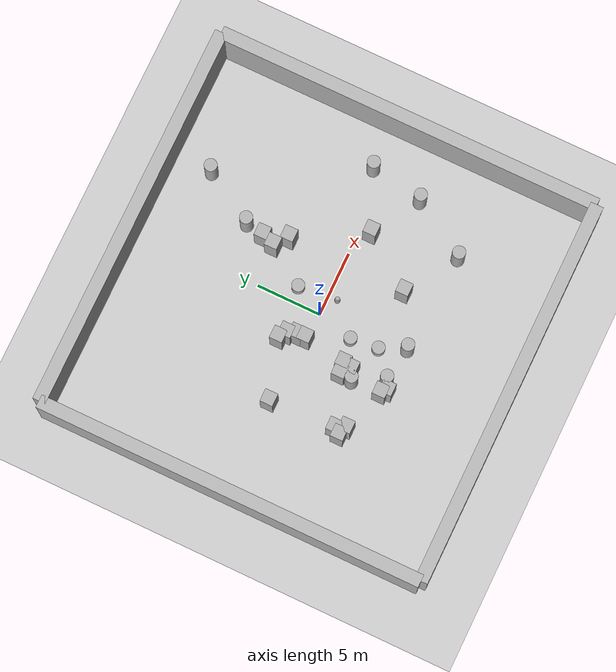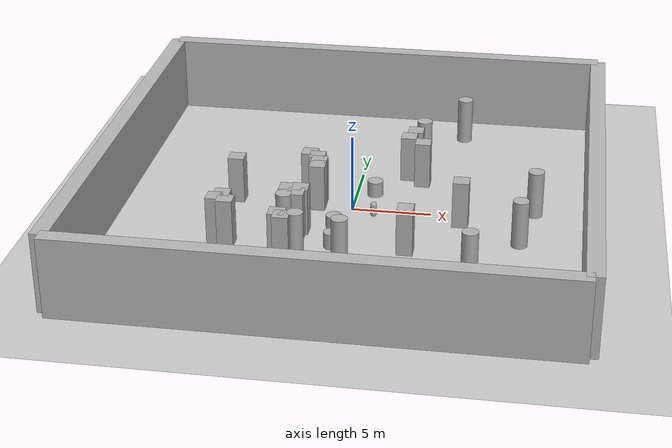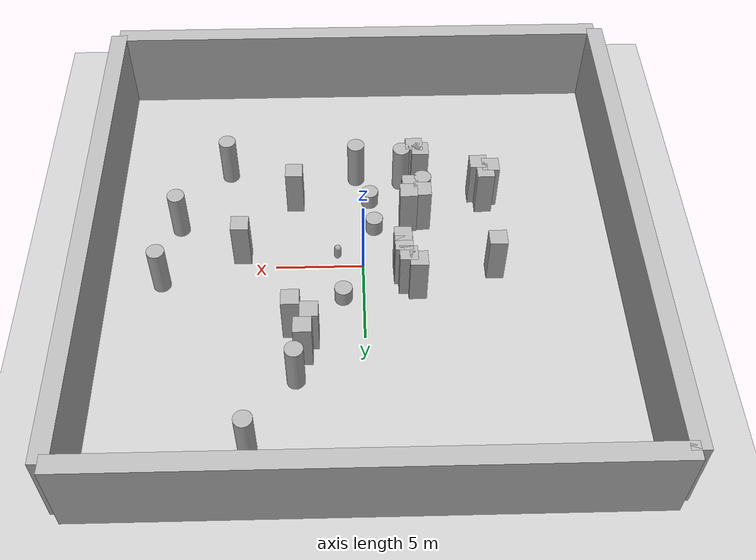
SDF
<sdf version="1.10">
 <world name="map">
  <physics name="1ms" type="ignored">
   <max_step_size>0.001</max_step_size>
   <real_time_factor>1</real_time_factor>
  </physics>
  <plugin filename="gz-sim-physics-system" name="gz::sim::systems::Physics"/>
  <plugin filename="gz-sim-sensors-system" name="gz::sim::systems::Sensors">
   <render_engine>ogre2</render_engine>
  </plugin>
  <plugin filename="gz-sim-user-commands-system" name="gz::sim::systems::UserCommands"/>
  <plugin filename="gz-sim-scene-broadcaster-system" name="gz::sim::systems::SceneBroadcaster"/>
  <plugin filename="gz-sim-air-pressure-system" name="gz::sim::systems::AirPressure"/>
  <plugin filename="gz-sim-air-speed-system" name="gz::sim::systems::AirSpeed"/>
  <plugin filename="gz-sim-altimeter-system" name="gz::sim::systems::Altimeter"/>
  <plugin filename="gz-sim-imu-system" name="gz::sim::systems::Imu"/>
  <plugin filename="gz-sim-magnetometer-system" name="gz::sim::systems::Magnetometer"/>
  <plugin filename="gz-sim-navsat-system" name="gz::sim::systems::NavSat"/>
  <atmosphere type="adiabatic"/>
  <scene>
   <ambient>0.400000006 0.400000006 0.400000006 1</ambient>
   <background>0.699999988 0.699999988 0.699999988 1</background>
   <shadows>true</shadows>
  </scene>
  <model name="ground_plane">
   <static>true</static>
   <link name="link">
    <collision name="collision">
     <geometry><plane><normal>0 0 1</normal><size>100 100</size></plane></geometry>
    </collision>
    <visual name="visual">
     <geometry><plane><normal>0 0 1</normal><size>100 100</size></plane></geometry>
     <material>
      <ambient>0.800000012 0.800000012 0.800000012 1</ambient>
      <diffuse>0.800000012 0.800000012 0.800000012 1</diffuse>
      <specular>0.800000012 0.800000012 0.800000012 1</specular>
     </material>
    </visual>
    <inertial>
     <mass>1</mass>
     <inertia><ixx>1</ixx><ixy>0</ixy><ixz>0</ixz><iyy>1</iyy><iyz>0</iyz><izz>1</izz></inertia>
    </inertial>
   </link>
  </model>
  <model name="box">
   <pose>3.3245237272664223 6.137337572602199 0.5 0 0 0</pose>
   <link name="box_link">
    <inertial>
     <inertia><ixx>0.16666</ixx><ixy>0</ixy><ixz>0</ixz><iyy>0.16666</iyy><iyz>0</iyz><izz>0.16666</izz></inertia>
     <mass>1</mass>
    </inertial>
    <collision name="box_collision"><geometry><box><size>1 1 5</size></box></geometry></collision>
    <visual name="box_visual">
     <geometry><box><size>1 1 5</size></box></geometry>
     <material>
      <ambient>0.300000012 0.300000012 0.300000012 1</ambient>
      <diffuse>0.699999988 0.699999988 0.699999988 1</diffuse>
      <specular>1 1 1 1</specular>
     </material>
    </visual>
   </link>
   <static>false</static>
  </model>
  <model name="cylinder">
   <pose>-0.72203590736623369 -2.8243370734408528 0.5 0 0 0</pose>
   <link name="cylinder_link">
    <inertial>
     <inertia>
      <ixx>0.14580000000000001</ixx>
      <ixy>0</ixy>
      <ixz>0</ixz>
      <iyy>0.14580000000000001</iyy>
      <iyz>0</iyz>
      <izz>0.125</izz>
     </inertia>
     <mass>1</mass>
    </inertial>
    <collision name="cylinder_collision">
     <geometry><cylinder><radius>0.5</radius><length>1</length></cylinder></geometry>
    </collision>
    <visual name="cylinder_visual">
     <geometry><cylinder><radius>0.5</radius><length>1</length></cylinder></geometry>
     <material>
      <ambient>0.300000012 0.300000012 0.300000012 1</ambient>
      <diffuse>0.699999988 0.699999988 0.699999988 1</diffuse>
      <specular>1 1 1 1</specular>
     </material>
    </visual>
   </link>
   <static>false</static>
  </model>
  <model name="box_0">
   <pose>2.9897288248366607 5.15230320680541 0.5 0 0 0</pose>
   <link name="box_link">
    <inertial>
     <inertia><ixx>0.16666</ixx><ixy>0</ixy><ixz>0</ixz><iyy>0.16666</iyy><iyz>0</iyz><izz>0.16666</izz></inertia>
     <mass>1</mass>
    </inertial>
    <collision name="box_collision"><geometry><box><size>1 1 5</size></box></geometry></collision>
    <visual name="box_visual">
     <geometry><box><size>1 1 5</size></box></geometry>
     <material>
      <ambient>0.300000012 0.300000012 0.300000012 1</ambient>
      <diffuse>0.699999988 0.699999988 0.699999988 1</diffuse>
      <specular>1 1 1 1</specular>
     </material>
    </visual>
   </link>
   <static>false</static>
  </model>
  <model name="box_1">
   <pose>3.9948109669313716 4.3431861216919927 0.5 0 0 0</pose>
   <link name="box_link">
    <inertial>
     <inertia><ixx>0.16666</ixx><ixy>0</ixy><ixz>0</ixz><iyy>0.16666</iyy><iyz>0</iyz><izz>0.16666</izz></inertia>
     <mass>1</mass>
    </inertial>
    <collision name="box_collision"><geometry><box><size>1 1 5</size></box></geometry></collision>
    <visual name="box_visual">
     <geometry><box><size>1 1 5</size></box></geometry>
     <material>
      <ambient>0.300000012 0.300000012 0.300000012 1</ambient>
      <diffuse>0.699999988 0.699999988 0.699999988 1</diffuse>
      <specular>1 1 1 1</specular>
     </material>
    </visual>
   </link>
   <static>false</static>
  </model>
  <model name="box_2">
   <pose>-6.9158057635143422 -5.3925937900630387 0.5 0 0 0</pose>
   <link name="box_link">
    <inertial>
     <inertia><ixx>0.16666</ixx><ixy>0</ixy><ixz>0</ixz><iyy>0.16666</iyy><iyz>0</iyz><izz>0.16666</izz></inertia>
     <mass>1</mass>
    </inertial>
    <collision name="box_collision"><geometry><box><size>1 1 5</size></box></geometry></collision>
    <visual name="box_visual">
     <geometry><box><size>1 1 5</size></box></geometry>
     <material>
      <ambient>0.300000012 0.300000012 0.300000012 1</ambient>
      <diffuse>0.699999988 0.699999988 0.699999988 1</diffuse>
      <specular>1 1 1 1</specular>
     </material>
    </visual>
   </link>
   <static>false</static>
  </model>
  <model name="box_3">
   <pose>-7.6136462022371774 -5.142927832510038 0.5 0 0 0</pose>
   <link name="box_link">
    <inertial>
     <inertia><ixx>0.16666</ixx><ixy>0</ixy><ixz>0</ixz><iyy>0.16666</iyy><iyz>0</iyz><izz>0.16666</izz></inertia>
     <mass>1</mass>
    </inertial>
    <collision name="box_collision"><geometry><box><size>1 1 5</size></box></geometry></collision>
    <visual name="box_visual">
     <geometry><box><size>1 1 5</size></box></geometry>
     <material>
      <ambient>0.300000012 0.300000012 0.300000012 1</ambient>
      <diffuse>0.699999988 0.699999988 0.699999988 1</diffuse>
      <specular>1 1 1 1</specular>
     </material>
    </visual>
   </link>
   <static>false</static>
  </model>
  <model name="box_4">
   <pose>-7.2855342701932955 -4.6225314286755168 0.5 0 0 0</pose>
   <link name="box_link">
    <inertial>
     <inertia><ixx>0.16666</ixx><ixy>0</ixy><ixz>0</ixz><iyy>0.16666</iyy><iyz>0</iyz><izz>0.16666</izz></inertia>
     <mass>1</mass>
    </inertial>
    <collision name="box_collision"><geometry><box><size>1 1 5</size></box></geometry></collision>
    <visual name="box_visual">
     <geometry><box><size>1 1 5</size></box></geometry>
     <material>
      <ambient>0.300000012 0.300000012 0.300000012 1</ambient>
      <diffuse>0.699999988 0.699999988 0.699999988 1</diffuse>
      <specular>1 1 1 1</specular>
     </material>
    </visual>
   </link>
   <static>false</static>
  </model>
  <model name="box_5">
   <pose>-3.0213739192808333 1.8634544273041493 0.5 0 0 0</pose>
   <link name="box_link">
    <inertial>
     <inertia><ixx>0.16666</ixx><ixy>0</ixy><ixz>0</ixz><iyy>0.16666</iyy><iyz>0</iyz><izz>0.16666</izz></inertia>
     <mass>1</mass>
    </inertial>
    <collision name="box_collision"><geometry><box><size>1 1 5</size></box></geometry></collision>
    <visual name="box_visual">
     <geometry><box><size>1 1 5</size></box></geometry>
     <material>
      <ambient>0.300000012 0.300000012 0.300000012 1</ambient>
      <diffuse>0.699999988 0.699999988 0.699999988 1</diffuse>
      <specular>1 1 1 1</specular>
     </material>
    </visual>
   </link>
   <static>false</static>
  </model>
  <model name="box_6">
   <pose>-2.4786264444795165 1.475592770159146 0.5 0 0 0</pose>
   <link name="box_link">
    <inertial>
     <inertia><ixx>0.16666</ixx><ixy>0</ixy><ixz>0</ixz><iyy>0.16666</iyy><iyz>0</iyz><izz>0.16666</izz></inertia>
     <mass>1</mass>
    </inertial>
    <collision name="box_collision"><geometry><box><size>1 1 5</size></box></geometry></collision>
    <visual name="box_visual">
     <geometry><box><size>1 1 5</size></box></geometry>
     <material>
      <ambient>0.300000012 0.300000012 0.300000012 1</ambient>
      <diffuse>0.699999988 0.699999988 0.699999988 1</diffuse>
      <specular>1 1 1 1</specular>
     </material>
    </visual>
   </link>
   <static>false</static>
  </model>
  <model name="box_7">
   <pose>-2.2465629230384287 0.76769296150061628 0.5 0 0 0</pose>
   <link name="box_link">
    <inertial>
     <inertia><ixx>0.16666</ixx><ixy>0</ixy><ixz>0</ixz><iyy>0.16666</iyy><iyz>0</iyz><izz>0.16666</izz></inertia>
     <mass>1</mass>
    </inertial>
    <collision name="box_collision"><geometry><box><size>1 1 5</size></box></geometry></collision>
    <visual name="box_visual">
     <geometry><box><size>1 1 5</size></box></geometry>
     <material>
      <ambient>0.300000012 0.300000012 0.300000012 1</ambient>
      <diffuse>0.699999988 0.699999988 0.699999988 1</diffuse>
      <specular>1 1 1 1</specular>
     </material>
    </visual>
   </link>
   <static>false</static>
  </model>
  <model name="box_8">
   <pose>-2.2234519485298136 0.095993541585208675 0.5 0 0 0</pose>
   <link name="box_link">
    <inertial>
     <inertia><ixx>0.16666</ixx><ixy>0</ixy><ixz>0</ixz><iyy>0.16666</iyy><iyz>0</iyz><izz>0.16666</izz></inertia>
     <mass>1</mass>
    </inertial>
    <collision name="box_collision"><geometry><box><size>1 1 5</size></box></geometry></collision>
    <visual name="box_visual">
     <geometry><box><size>1 1 5</size></box></geometry>
     <material>
      <ambient>0.300000012 0.300000012 0.300000012 1</ambient>
      <diffuse>0.699999988 0.699999988 0.699999988 1</diffuse>
      <specular>1 1 1 1</specular>
     </material>
    </visual>
   </link>
   <static>false</static>
  </model>
  <model name="cylinder_0">
   <pose>-0.50989404792879967 -4.9760559913132347 0.5 0 0 0</pose>
   <link name="cylinder_link">
    <inertial>
     <inertia>
      <ixx>0.14580000000000001</ixx>
      <ixy>0</ixy>
      <ixz>0</ixz>
      <iyy>0.14580000000000001</iyy>
      <iyz>0</iyz>
      <izz>0.125</izz>
     </inertia>
     <mass>1</mass>
    </inertial>
    <collision name="cylinder_collision">
     <geometry><cylinder><radius>0.5</radius><length>1</length></cylinder></geometry>
    </collision>
    <visual name="cylinder_visual">
     <geometry><cylinder><radius>0.5</radius><length>1</length></cylinder></geometry>
     <material>
      <ambient>0.300000012 0.300000012 0.300000012 1</ambient>
      <diffuse>0.699999988 0.699999988 0.699999988 1</diffuse>
      <specular>1 1 1 1</specular>
     </material>
    </visual>
   </link>
   <static>false</static>
  </model>
  <model name="capsule">
   <pose>1.4533725246880671 -0.74794199459035937 0.5 0 0 0</pose>
   <link name="capsule_link">
    <inertial>
     <inertia>
      <ixx>0.074153999999999998</ixx>
      <ixy>0</ixy>
      <ixz>0</ixz>
      <iyy>0.074153999999999998</iyy>
      <iyz>0</iyz>
      <izz>0.018769000000000001</izz>
     </inertia>
     <mass>1</mass>
    </inertial>
    <collision name="capsule_collision">
     <geometry>
      <capsule><radius>0.20000000000000001</radius><length>0.59999999999999998</length></capsule>
     </geometry>
    </collision>
    <visual name="capsule_visual">
     <geometry>
      <capsule><radius>0.20000000000000001</radius><length>0.59999999999999998</length></capsule>
     </geometry>
     <material>
      <ambient>0.300000012 0.300000012 0.300000012 1</ambient>
      <diffuse>0.699999988 0.699999988 0.699999988 1</diffuse>
      <specular>1 1 1 1</specular>
     </material>
    </visual>
   </link>
   <static>false</static>
  </model>
  <model name="cylinder_1">
   <pose>1.1536750640728535 2.2748950176591531 0.5 0 0 0</pose>
   <link name="cylinder_link">
    <inertial>
     <inertia>
      <ixx>0.14580000000000001</ixx>
      <ixy>0</ixy>
      <ixz>0</ixz>
      <iyy>0.14580000000000001</iyy>
      <iyz>0</iyz>
      <izz>0.125</izz>
     </inertia>
     <mass>1</mass>
    </inertial>
    <collision name="cylinder_collision">
     <geometry><cylinder><radius>0.5</radius><length>1</length></cylinder></geometry>
    </collision>
    <visual name="cylinder_visual">
     <geometry><cylinder><radius>0.5</radius><length>1</length></cylinder></geometry>
     <material>
      <ambient>0.300000012 0.300000012 0.300000012 1</ambient>
      <diffuse>0.699999988 0.699999988 0.699999988 1</diffuse>
      <specular>1 1 1 1</specular>
     </material>
    </visual>
   </link>
   <static>false</static>
  </model>
  <model name="box_9">
   <pose>6.9234266521545145 -0.89752316878740324 0.5 0 0 0</pose>
   <link name="box_link">
    <inertial>
     <inertia><ixx>0.16666</ixx><ixy>0</ixy><ixz>0</ixz><iyy>0.16666</iyy><iyz>0</iyz><izz>0.16666</izz></inertia>
     <mass>1</mass>
    </inertial>
    <collision name="box_collision"><geometry><box><size>1 1 5</size></box></geometry></collision>
    <visual name="box_visual">
     <geometry><box><size>1 1 5</size></box></geometry>
     <material>
      <ambient>0.300000012 0.300000012 0.300000012 1</ambient>
      <diffuse>0.699999988 0.699999988 0.699999988 1</diffuse>
      <specular>1 1 1 1</specular>
     </material>
    </visual>
   </link>
   <static>false</static>
  </model>
  <model name="box_10">
   <pose>-7.4943273373032717 0.47922763391659196 0.5 0 0 0</pose>
   <link name="box_link">
    <inertial>
     <inertia><ixx>0.16666</ixx><ixy>0</ixy><ixz>0</ixz><iyy>0.16666</iyy><iyz>0</iyz><izz>0.16666</izz></inertia>
     <mass>1</mass>
    </inertial>
    <collision name="box_collision"><geometry><box><size>1 1 5</size></box></geometry></collision>
    <visual name="box_visual">
     <geometry><box><size>1 1 5</size></box></geometry>
     <material>
      <ambient>0.300000012 0.300000012 0.300000012 1</ambient>
      <diffuse>0.699999988 0.699999988 0.699999988 1</diffuse>
      <specular>1 1 1 1</specular>
     </material>
    </visual>
   </link>
   <static>false</static>
  </model>
  <model name="box_11">
   <pose>3.9416168242545098 -4.9045093547489529 0.5 0 0 0</pose>
   <link name="box_link">
    <inertial>
     <inertia><ixx>0.16666</ixx><ixy>0</ixy><ixz>0</ixz><iyy>0.16666</iyy><iyz>0</iyz><izz>0.16666</izz></inertia>
     <mass>1</mass>
    </inertial>
    <collision name="box_collision"><geometry><box><size>1 1 5</size></box></geometry></collision>
    <visual name="box_visual">
     <geometry><box><size>1 1 5</size></box></geometry>
     <material>
      <ambient>0.300000012 0.300000012 0.300000012 1</ambient>
      <diffuse>0.699999988 0.699999988 0.699999988 1</diffuse>
      <specular>1 1 1 1</specular>
     </material>
    </visual>
   </link>
   <static>false</static>
  </model>
  <model name="box_12">
   <pose>-3.1907677776918426 -6.9076576333268314 0.5 0 0 0</pose>
   <link name="box_link">
    <inertial>
     <inertia><ixx>0.16666</ixx><ixy>0</ixy><ixz>0</ixz><iyy>0.16666</iyy><iyz>0</iyz><izz>0.16666</izz></inertia>
     <mass>1</mass>
    </inertial>
    <collision name="box_collision"><geometry><box><size>1 1 5</size></box></geometry></collision>
    <visual name="box_visual">
     <geometry><box><size>1 1 5</size></box></geometry>
     <material>
      <ambient>0.300000012 0.300000012 0.300000012 1</ambient>
      <diffuse>0.699999988 0.699999988 0.699999988 1</diffuse>
      <specular>1 1 1 1</specular>
     </material>
    </visual>
   </link>
   <static>false</static>
  </model>
  <model name="box_13">
   <pose>-3.5319714827078954 -6.55103836573966 0.5 0 0 0</pose>
   <link name="box_link">
    <inertial>
     <inertia><ixx>0.16666</ixx><ixy>0</ixy><ixz>0</ixz><iyy>0.16666</iyy><iyz>0</iyz><izz>0.16666</izz></inertia>
     <mass>1</mass>
    </inertial>
    <collision name="box_collision"><geometry><box><size>1 1 5</size></box></geometry></collision>
    <visual name="box_visual">
     <geometry><box><size>1 1 5</size></box></geometry>
     <material>
      <ambient>0.300000012 0.300000012 0.300000012 1</ambient>
      <diffuse>0.699999988 0.699999988 0.699999988 1</diffuse>
      <specular>1 1 1 1</specular>
     </material>
    </visual>
   </link>
   <static>false</static>
  </model>
  <model name="box_14">
   <pose>-3.5026384362716669 -3.2829280644309637 0.5 0 0 0</pose>
   <link name="box_link">
    <inertial>
     <inertia><ixx>0.16666</ixx><ixy>0</ixy><ixz>0</ixz><iyy>0.16666</iyy><iyz>0</iyz><izz>0.16666</izz></inertia>
     <mass>1</mass>
    </inertial>
    <collision name="box_collision"><geometry><box><size>1 1 5</size></box></geometry></collision>
    <visual name="box_visual">
     <geometry><box><size>1 1 5</size></box></geometry>
     <material>
      <ambient>0.300000012 0.300000012 0.300000012 1</ambient>
      <diffuse>0.699999988 0.699999988 0.699999988 1</diffuse>
      <specular>1 1 1 1</specular>
     </material>
    </visual>
   </link>
   <static>false</static>
  </model>
  <model name="box_15">
   <pose>-2.8649395179991046 -3.8670036450438285 0.5 0 0 0</pose>
   <link name="box_link">
    <inertial>
     <inertia><ixx>0.16666</ixx><ixy>0</ixy><ixz>0</ixz><iyy>0.16666</iyy><iyz>0</iyz><izz>0.16666</izz></inertia>
     <mass>1</mass>
    </inertial>
    <collision name="box_collision"><geometry><box><size>1 1 5</size></box></geometry></collision>
    <visual name="box_visual">
     <geometry><box><size>1 1 5</size></box></geometry>
     <material>
      <ambient>0.300000012 0.300000012 0.300000012 1</ambient>
      <diffuse>0.699999988 0.699999988 0.699999988 1</diffuse>
      <specular>1 1 1 1</specular>
     </material>
    </visual>
   </link>
   <static>false</static>
  </model>
  <model name="box_16">
   <pose>-2.7119486695131449 -3.1823662800570904 0.5 0 0 0</pose>
   <link name="box_link">
    <inertial>
     <inertia><ixx>0.16666</ixx><ixy>0</ixy><ixz>0</ixz><iyy>0.16666</iyy><iyz>0</iyz><izz>0.16666</izz></inertia>
     <mass>1</mass>
    </inertial>
    <collision name="box_collision"><geometry><box><size>1 1 5</size></box></geometry></collision>
    <visual name="box_visual">
     <geometry><box><size>1 1 5</size></box></geometry>
     <material>
      <ambient>0.300000012 0.300000012 0.300000012 1</ambient>
      <diffuse>0.699999988 0.699999988 0.699999988 1</diffuse>
      <specular>1 1 1 1</specular>
     </material>
    </visual>
   </link>
   <static>false</static>
  </model>
  <light name="sun" type="directional">
   <pose>0 0 10 0 0 0</pose>
   <intensity>1</intensity>
   <direction>-0.5 0.10000000000000001 -0.90000000000000002</direction>
   <diffuse>0.800000012 0.800000012 0.800000012 1</diffuse>
   <specular>0.200000003 0.200000003 0.200000003 1</specular>
   <attenuation>
    <range>1000</range>
    <linear>0.01</linear>
    <constant>0.90000000000000002</constant>
    <quadratic>0.001</quadratic>
   </attenuation>
   <spot><inner_angle>0</inner_angle><outer_angle>0</outer_angle><falloff>0</falloff></spot>
  </light>
  <model name="wall_north">
   <pose>0 15 2.5 0 0 0</pose>
   <static>true</static>
   <link name="wall_link">
    <collision name="wall_collision"><geometry><box><size>30 1 5</size></box></geometry></collision>
    <visual name="wall_visual"><geometry><box><size>30 1 5</size></box></geometry></visual>
   </link>
  </model>
  <model name="wall_south">
   <pose>0 -15 2.5 0 0 0</pose>
   <static>true</static>
   <link name="wall_link">
    <collision name="wall_collision"><geometry><box><size>30 1 5</size></box></geometry></collision>
    <visual name="wall_visual"><geometry><box><size>30 1 5</size></box></geometry></visual>
   </link>
  </model>
  <model name="wall_east">
   <pose>15 0 2.5 0 0 0</pose>
   <static>true</static>
   <link name="wall_link">
    <collision name="wall_collision"><geometry><box><size>1 30 5</size></box></geometry></collision>
    <visual name="wall_visual"><geometry><box><size>1 30 5</size></box></geometry></visual>
   </link>
  </model>
  <model name="wall_west">
   <pose>-15 0 2.5 0 0 0</pose>
   <static>true</static>
   <link name="wall_link">
    <collision name="wall_collision"><geometry><box><size>1 30 5</size></box></geometry></collision>
    <visual name="wall_visual"><geometry><box><size>1 30 5</size></box></geometry></visual>
   </link>
  </model>
  <include><uri>model://pillar</uri><name>pillar_0</name><pose>6.13 11.68 0.50 0 0 0</pose></include>
  <include><uri>model://pillar</uri><name>pillar_1</name><pose>10.69 -3.07 0.50 0 0 0</pose></include>
  <include><uri>model://pillar</uri><name>pillar_2</name><pose>3.73 7.67 0.50 0 0 0</pose></include>
  <include><uri>model://pillar</uri><name>pillar_3</name><pose>-2.43 -6.53 0.50 0 0 0</pose></include>
  <include><uri>model://pillar</uri><name>pillar_4</name><pose>7.99 -7.39 0.50 0 0 0</pose></include>
  <include><uri>model://pillar</uri><name>pillar_5</name><pose>0.28 -6.92 0.50 0 0 0</pose></include>
  <include><uri>model://pillar</uri><name>pillar_6</name><pose>11.44 1.05 0.50 0 0 0</pose></include>
  <include><uri>model://pillar</uri><name>pillar_7</name><pose>-3.56 -4.22 0.50 0 0 0</pose></include>
 </world>
</sdf>

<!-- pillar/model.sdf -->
<sdf version="1.10">
  <model name="pillar">
    <static>true</static>
    <link name="pillar_link">
      <inertial>
        <mass>1</mass>
        <inertia>
          <ixx>0.1458</ixx>
          <iyy>0.1458</iyy>
          <izz>0.125</izz>
          <ixy>0</ixy><ixz>0</ixz><iyz>0</iyz>
        </inertia>
      </inertial>
      <collision name="pillar_collision">
        <geometry>
          <cylinder>
            <!-- 半径0.5m、高さ1m -->
            <radius>0.5</radius>
            <length>5</length>
          </cylinder>
        </geometry>
        <surface><friction><ode/></friction></surface>
      </collision>
      <visual name="pillar_visual">
        <geometry>
          <cylinder>
            <radius>0.5</radius>
            <length>5</length>
          </cylinder>
        </geometry>
        <material>
          <ambient>0.3 0.3 0.3 1</ambient>
          <diffuse>0.7 0.7 0.7 1</diffuse>
        </material>
      </visual>
      <pose>0 0 0 0 0 0</pose>
    </link>
    <pose>0 0 0 0 0 0</pose>
  </model>
</sdf>
